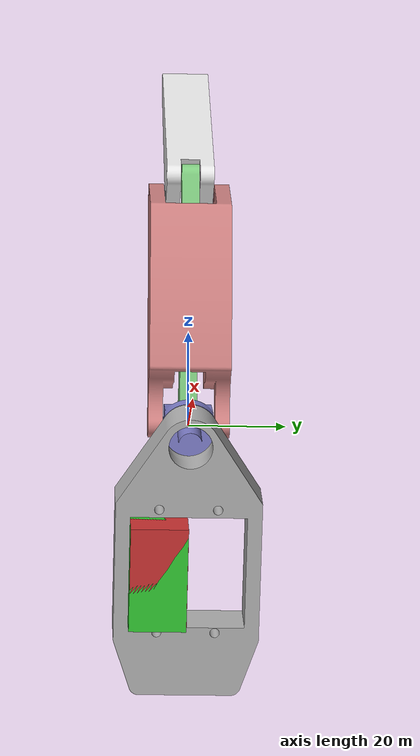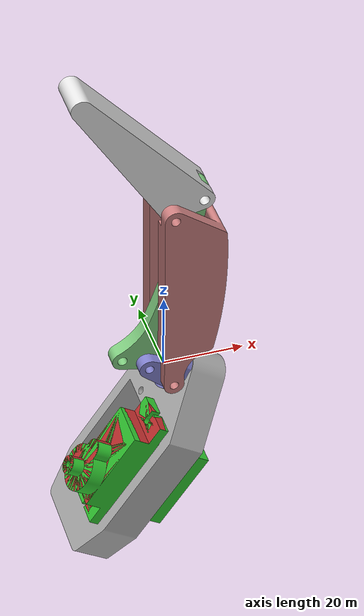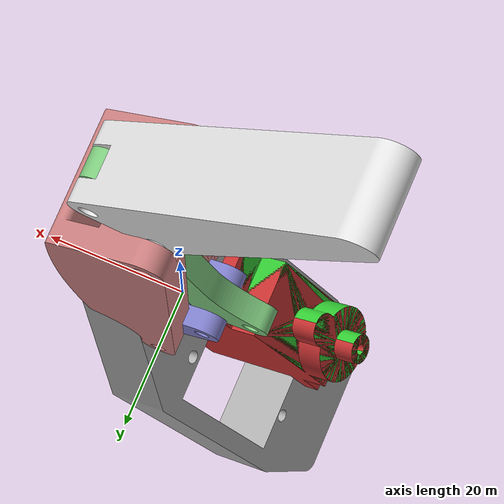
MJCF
<mujoco model="finger_fixed">
  <compiler angle="radian" meshdir="meshes" autolimits="true"/>
  <option gravity="0 0 -9.81" timestep="0.0005"/>

    <asset>
    <mesh name="servo_frame" file="servo_frame.stl"/>
    <mesh name="servo_sg90" file="servo_sg90.stl"/>
    <mesh name="finger_base" file="finger_base.stl"/>
    <mesh name="finger_mid" file="finger_mid.stl"/>
    <mesh name="fingertip" file="fingertip.stl"/>
    <mesh name="transmission" file="transmission.stl"/>
  </asset>

  <default>
    <!-- 大幅增加阻尼和惯量，提高数值稳定性 -->
    <joint damping="1.0" armature="0.01" frictionloss="0.01"/>
    <geom contype="1" conaffinity="1" margin="0.001" solref="0.01 1" solimp="0.9 0.95 0.001"/>
    <position ctrllimited="true" ctrlrange="-1.57 1.57" kp="10"/>
  </default>

  <worldbody>
    <!-- 舵机框架作为基座 -->
    <body name="base" pos="0 0 0">
      <geom name="base_geom" type="mesh" mesh="servo_frame" pos="0 0 0" quat="1 0 0 0"
            density="2700" rgba="0.7 0.7 0.7 1"/>

      <!-- 舵机1 - 安装在框架上 -->
      <body name="servo1" pos="0.02 0.015 0.01">
        <geom name="servo1_geom" type="mesh" mesh="servo_sg90" pos="0 0 0" quat="1 0 0 0"
              density="1500" rgba="0.8 0.2 0.2 1"/>
        <joint name="j_servo1" type="hinge" axis="0 1 0" pos="0 0 0" range="-1.57 1.57"/>
        <site name="s_servo1_out" pos="0.01 0 0" size="0.002" rgba="1 0 0 1"/>
      </body>

      <!-- 舵机2 - 安装在框架上 -->
      <body name="servo2" pos="0.02 -0.015 0.01">
        <geom name="servo2_geom" type="mesh" mesh="servo_sg90" pos="0 0 0" quat="1 0 0 0"
              density="1500" rgba="0.2 0.8 0.2 1"/>
        <joint name="j_servo2" type="hinge" axis="0 1 0" pos="0 0 0" range="-1.57 1.57"/>
        <site name="s_servo2_out" pos="0.01 0 0" size="0.002" rgba="0 1 0 1"/>
      </body>

      <!-- 指转部件（基节）- 连接到框架，调整位置避免碰撞 -->
      <body name="link_base" pos="0.05 0 0.02">
        <geom name="link_base_geom" type="mesh" mesh="finger_base" pos="0 0 0" quat="1 0 0 0"
              density="1100" rgba="0.5 0.5 0.8 1"/>
        <!-- 增加阻尼的关节 -->
        <joint name="j_base" type="hinge" axis="0 1 0" pos="0 0 0" range="-1.2 1.2" damping="2.0"/>
        <site name="s_base_tip" pos="0.03 0 0" size="0.002" rgba="0 0 1 1"/>

        <!-- 指柱部件（中节）- 连接到指转 -->
        <body name="link_mid" pos="0.035 0 0">
          <geom name="link_mid_geom" type="mesh" mesh="finger_mid" pos="0 0 0" quat="1 0 0 0"
                density="1100" rgba="0.8 0.5 0.5 1"/>
          <joint name="j_mid" type="hinge" axis="0 1 0" pos="0 0 0" range="-1.2 1.2"/>
          <site name="s_mid_tip" pos="0.025 0 0" size="0.002" rgba="1 0 1 1"/>

          <!-- 指尖部件（末节）- 连接到指柱 -->
          <body name="link_tip" pos="0.025 0 0">
            <geom name="link_tip_geom" type="mesh" mesh="fingertip" pos="0 0 0" quat="1 0 0 0"
                  density="1100" rgba="0.9 0.9 0.9 1"/>
            <joint name="j_tip" type="hinge" axis="0 1 0" pos="0 0 0" range="-1.2 1.2"/>
            <site name="s_fingertip" pos="0.02 0 0" size="0.002" rgba="1 1 0 1"/>
          </body>
        </body>
      </body>

      <!-- 指传动部件 - 独立body，调整位置避免碰撞 -->
      <body name="link_trans" pos="0.05 0.02 0.01">
        <geom name="link_trans_geom" type="mesh" mesh="transmission" pos="0 0 0" quat="1 0 0 0"
              density="1100" rgba="0.5 0.8 0.5 1"/>
        <joint name="j_trans" type="hinge" axis="0 1 0" pos="0 0 0" range="-1.0 1.0" damping="1.5"/>
        <site name="s_trans_output" pos="0.02 0 0" size="0.002" rgba="0 1 1 1"/>
      </body>
    </body>
  </worldbody>

  <!-- 执行器配置 - 大幅降低增益 -->
  <actuator>
    <!-- 舵机执行器 - 降低增益 -->
    <position name="a_servo1" joint="j_servo1" kp="10"/>
    <position name="a_servo2" joint="j_servo2" kp="10"/>

    <!-- 指传动执行器 - 降低增益 -->
    <position name="a_trans1" joint="j_trans" kp="8"/>

    <!-- 指节执行器 - 暂时禁用，避免冲突 -->
  </actuator>

  <!-- 传感器配置 -->
  <sensor>
    <!-- 关节位置传感器 -->
    <jointpos joint="j_servo1" name="servo1_pos"/>
    <jointpos joint="j_servo2" name="servo2_pos"/>
    <jointpos joint="j_base" name="base_pos"/>
    <jointpos joint="j_mid" name="mid_pos"/>
    <jointpos joint="j_tip" name="tip_pos"/>
    <jointpos joint="j_trans" name="trans_pos"/>

    <!-- 关节速度传感器 -->
    <jointvel joint="j_servo1" name="servo1_vel"/>
    <jointvel joint="j_servo2" name="servo2_vel"/>
    <jointvel joint="j_base" name="base_vel"/>
    <jointvel joint="j_mid" name="mid_vel"/>
    <jointvel joint="j_tip" name="tip_vel"/>
    <jointvel joint="j_trans" name="trans_vel"/>

    <!-- 指尖力传感器 -->
    <force site="s_fingertip" name="fingertip_force"/>
    <torque site="s_fingertip" name="fingertip_torque"/>
  </sensor>

  <!-- 可视化设置 -->
  <visual>
    <global azimuth="120" elevation="-20"/>
    <headlight ambient="0.4 0.4 0.4" diffuse="0.8 0.8 0.8" specular="0.3 0.3 0.3"/>
  </visual>
</mujoco>
